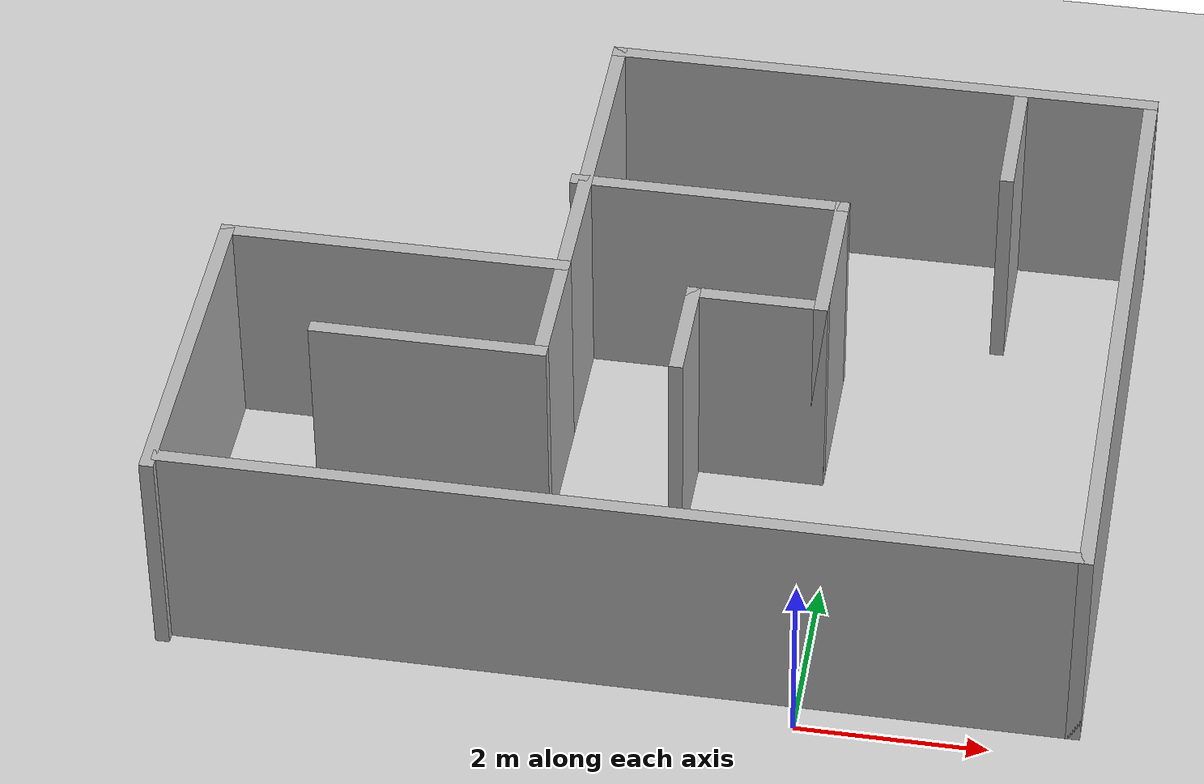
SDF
<?xml version="1.0"?>
<sdf version="1.7">
  <world name="mart_world">

    <!-- Default Gazebo environment -->
    <include>
      <uri>model://ground_plane</uri>
    </include>

    <include>
      <uri>model://sun</uri>
    </include>

    <!-- Your custom structure -->
    <model name="mart_world">
      <static>1</static>
      <pose>-1.90287 3.77064 0 0 0 0</pose>

      <link name="Wall_10">
        <collision name="Wall_10_Collision">
          <geometry>
            <box>
              <size>1.5 0.15 2.5</size>
            </box>
          </geometry>
          <pose>0 0 1.25 0 0 0</pose>
        </collision>
        <visual name="Wall_10_Visual">
          <pose>0 0 1.25 0 0 0</pose>
          <geometry>
            <box>
              <size>1.5 0.15 2.5</size>
            </box>
          </geometry>
          <material>
            <ambient>0.7 0.7 0.7 1</ambient>
          </material>
        </visual>
        <pose>-1.125 -0.579362 0 0 0 -1.5708</pose>
      </link>

      <link name="Wall_11">
        <collision name="Wall_11_Collision">
          <geometry>
            <box>
              <size>2.5 0.15 2.5</size>
            </box>
          </geometry>
          <pose>0 0 1.25 0 0 0</pose>
        </collision>
        <visual name="Wall_11_Visual">
          <pose>0 0 1.25 0 0 0</pose>
          <geometry>
            <box>
              <size>2.5 0.15 2.5</size>
            </box>
          </geometry>
          <material>
            <ambient>0.7 0.7 0.7 1</ambient>
          </material>
        </visual>
        <pose>-2.3 -1.25436 0 0 0 3.14159</pose>
      </link>

      <link name="Wall_13">
        <collision name="Wall_13_Collision">
          <geometry>
            <box>
              <size>3 0.15 2.5</size>
            </box>
          </geometry>
          <pose>0 0 1.25 0 0 0</pose>
        </collision>
        <visual name="Wall_13_Visual">
          <pose>0 0 1.25 0 0 0</pose>
          <geometry>
            <box>
              <size>3 0.15 2.5</size>
            </box>
          </geometry>
          <material>
            <ambient>0.7 0.7 0.7 1</ambient>
          </material>
        </visual>
        <pose>0.214634 1.49223 0 0 0 0</pose>
      </link>

      <link name="Wall_14">
        <collision name="Wall_14_Collision">
          <geometry>
            <box>
              <size>1.75 0.15 2.5</size>
            </box>
          </geometry>
          <pose>0 0 1.25 0 0 0</pose>
        </collision>
        <visual name="Wall_14_Visual">
          <pose>0 0 1.25 0 0 0</pose>
          <geometry>
            <box>
              <size>1.75 0.15 2.5</size>
            </box>
          </geometry>
          <material>
            <ambient>0.7 0.7 0.7 1</ambient>
          </material>
        </visual>
        <pose>1.63963 0.692228 0 0 0 -1.5708</pose>
      </link>

      <link name="Wall_15">
        <collision name="Wall_15_Collision">
          <geometry>
            <box>
              <size>1.5 0.15 2.5</size>
            </box>
          </geometry>
          <pose>0 0 1.25 0 0 0</pose>
        </collision>
        <visual name="Wall_15_Visual">
          <pose>0 0 1.25 0 0 0</pose>
          <geometry>
            <box>
              <size>1.5 0.15 2.5</size>
            </box>
          </geometry>
          <material>
            <ambient>0.7 0.7 0.7 1</ambient>
          </material>
        </visual>
        <pose>0.964634 -0.107772 0 0 0 3.14159</pose>
      </link>

      <link name="Wall_16">
        <collision name="Wall_16_Collision">
          <geometry>
            <box>
              <size>1.25 0.15 2.5</size>
            </box>
          </geometry>
          <pose>0 0 1.25 0 0 0</pose>
        </collision>
        <visual name="Wall_16_Visual">
          <pose>0 0 1.25 0 0 0</pose>
          <geometry>
            <box>
              <size>1.25 0.15 2.5</size>
            </box>
          </geometry>
          <material>
            <ambient>0.7 0.7 0.7 1</ambient>
          </material>
        </visual>
        <pose>0.289634 -0.657772 0 0 0 -1.5708</pose>
      </link>

      <link name="Wall_18">
        <collision name="Wall_18_Collision">
          <geometry>
            <box>
              <size>1.5 0.15 2.5</size>
            </box>
          </geometry>
          <pose>0 0 1.25 0 0 0</pose>
        </collision>
        <visual name="Wall_18_Visual">
          <pose>0 0 1.25 0 0 0</pose>
          <geometry>
            <box>
              <size>1.5 0.15 2.5</size>
            </box>
          </geometry>
          <material>
            <ambient>0.7 0.7 0.7 1</ambient>
          </material>
        </visual>
        <pose>3.31699 2.92795 0 0 0 -1.5708</pose>
      </link>

      <link name="Wall_3">
        <collision name="Wall_3_Collision">
          <geometry>
            <box>
              <size>9.5 0.15 2.5</size>
            </box>
          </geometry>
          <pose>0 0 1.25 0 0 0</pose>
        </collision>
        <visual name="Wall_3_Visual">
          <pose>0 0 1.25 0 0 0</pose>
          <geometry>
            <box>
              <size>9.5 0.15 2.5</size>
            </box>
          </geometry>
          <material>
            <ambient>0.7 0.7 0.7 1</ambient>
          </material>
        </visual>
        <pose>0.05 -3.40436 0 0 0 0</pose>
      </link>

      <link name="Wall_4">
        <collision name="Wall_4_Collision">
          <geometry>
            <box>
              <size>7.25 0.15 2.5</size>
            </box>
          </geometry>
          <pose>0 0 1.25 0 0 0</pose>
        </collision>
        <visual name="Wall_4_Visual">
          <pose>0 0 1.25 0 0 0</pose>
          <geometry>
            <box>
              <size>7.25 0.15 2.5</size>
            </box>
          </geometry>
          <material>
            <ambient>0.7 0.7 0.7 1</ambient>
          </material>
        </visual>
        <pose>4.725 0.145638 0 0 0 1.5708</pose>
      </link>

      <link name="Wall_5">
        <collision name="Wall_5_Collision">
          <geometry>
            <box>
              <size>6 0.15 2.5</size>
            </box>
          </geometry>
          <pose>0 0 1.25 0 0 0</pose>
        </collision>
        <visual name="Wall_5_Visual">
          <pose>0 0 1.25 0 0 0</pose>
          <geometry>
            <box>
              <size>6 0.15 2.5</size>
            </box>
          </geometry>
          <material>
            <ambient>0.7 0.7 0.7 1</ambient>
          </material>
        </visual>
        <pose>1.8 3.69564 0 0 0 3.14159</pose>
      </link>

      <link name="Wall_6">
        <collision name="Wall_6_Collision">
          <geometry>
            <box>
              <size>3.75 0.15 2.5</size>
            </box>
          </geometry>
          <pose>0 0 1.25 0 0 0</pose>
        </collision>
        <visual name="Wall_6_Visual">
          <pose>0 0 1.25 0 0 0</pose>
          <geometry>
            <box>
              <size>3.75 0.15 2.5</size>
            </box>
          </geometry>
          <material>
            <ambient>0.7 0.7 0.7 1</ambient>
          </material>
        </visual>
        <pose>-1.125 1.89564 0 0 0 -1.5708</pose>
      </link>

      <link name="Wall_7">
        <collision name="Wall_7_Collision">
          <geometry>
            <box>
              <size>3.75 0.15 2.5</size>
            </box>
          </geometry>
          <pose>0 0 1.25 0 0 0</pose>
        </collision>
        <visual name="Wall_7_Visual">
          <pose>0 0 1.25 0 0 0</pose>
          <geometry>
            <box>
              <size>3.75 0.15 2.5</size>
            </box>
          </geometry>
          <material>
            <ambient>0.7 0.7 0.7 1</ambient>
          </material>
        </visual>
        <pose>-2.925 0.095638 0 0 0 3.14159</pose>
      </link>

      <link name="Wall_8">
        <collision name="Wall_8_Collision">
          <geometry>
            <box>
              <size>3.75 0.15 2.5</size>
            </box>
          </geometry>
          <pose>0 0 1.25 0 0 0</pose>
        </collision>
        <visual name="Wall_8_Visual">
          <pose>0 0 1.25 0 0 0</pose>
          <geometry>
            <box>
              <size>3.75 0.15 2.5</size>
            </box>
          </geometry>
          <material>
            <ambient>0.7 0.7 0.7 1</ambient>
          </material>
        </visual>
        <pose>-4.725 -1.70436 0 0 0 -1.5708</pose>
      </link>

    </model>
  </world>
</sdf>
